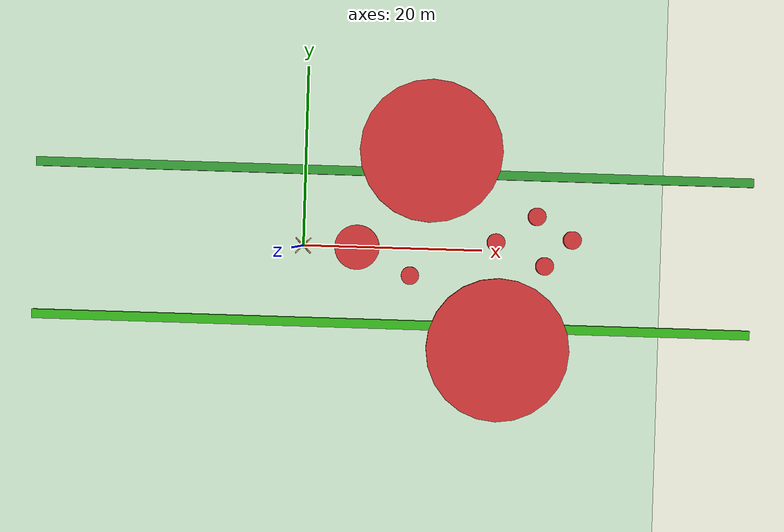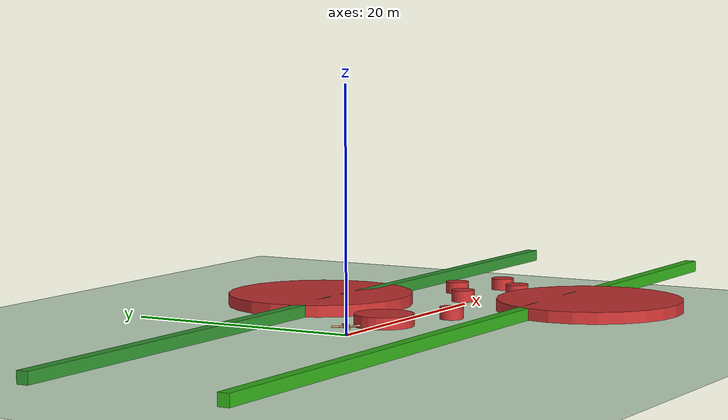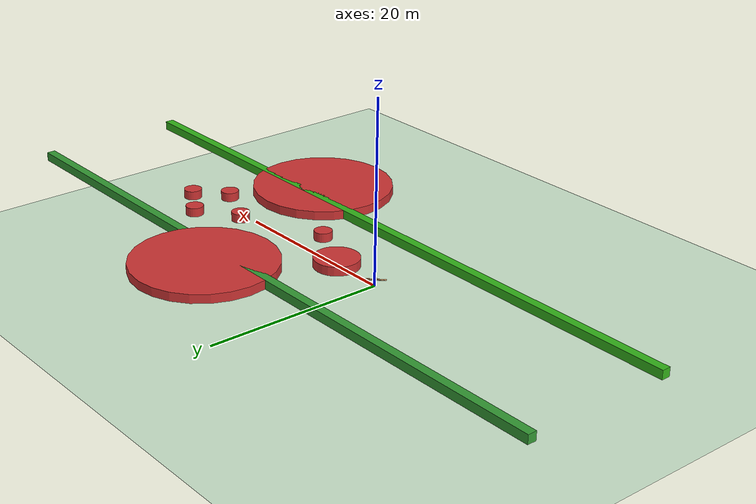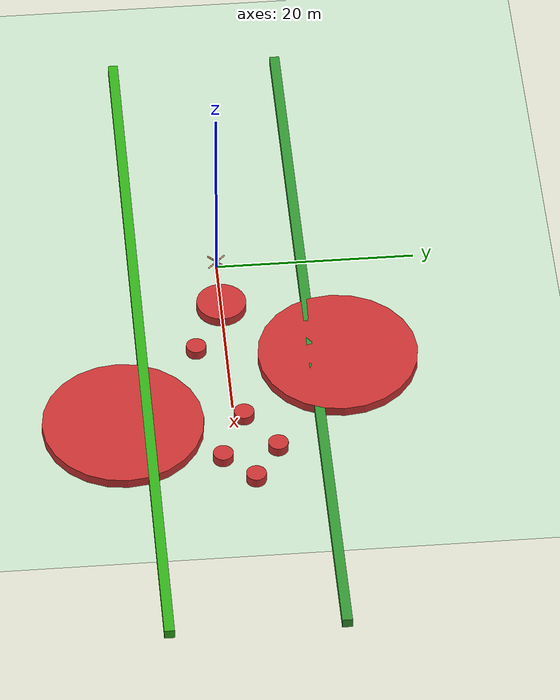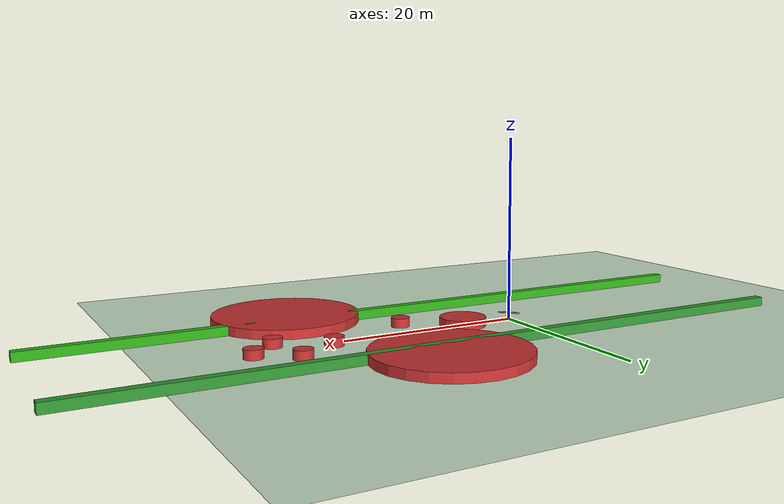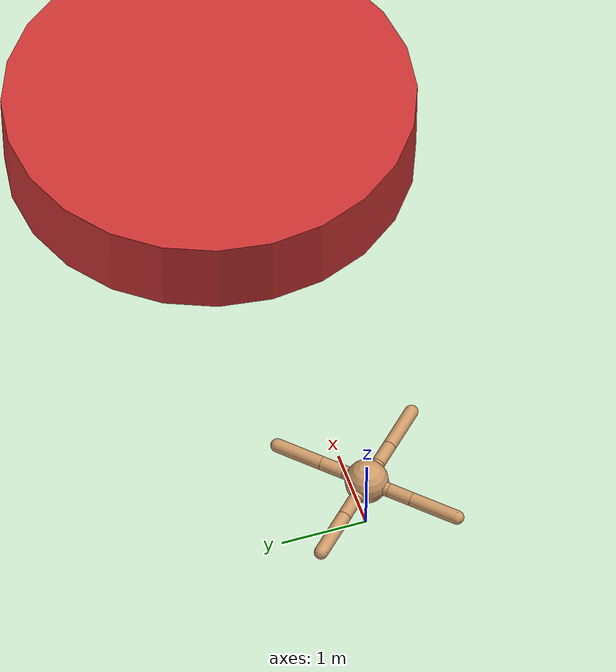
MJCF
<mujoco model="ant">
  <compiler angle="degree" coordinate="local" inertiafromgeom="true"/>
  <option integrator="RK4" timestep="0.01"/>
  <custom>
    <numeric data="0.0 0.0 0.55 1.0 0.0 0.0 0.0 0.0 1.0 0.0 -1.0 0.0 -1.0 0.0 1.0" name="init_qpos"/>
  </custom>
  <default>
    <joint armature="1" damping="1" limited="true"/>
    <geom conaffinity="0" condim="3" density="5.0" friction="1 0.5 0.5" margin="0.01" rgba="0.8 0.6 0.4 1"/>
  </default>
  <asset>
    <texture builtin="gradient" height="100" rgb1="1 1 1" rgb2="0 0 0" type="skybox" width="100"/>
    <texture builtin="flat" height="1278" mark="cross" markrgb="1 1 1" name="texgeom" random="0.01" rgb1="0.8 0.6 0.4" rgb2="0.8 0.6 0.4" type="cube" width="127"/>
    <texture builtin="checker" height="100" name="texplane" rgb1="0 0 0" rgb2="0.8 0.8 0.8" type="2d" width="100"/>
    <material name="MatPlane" reflectance="0.5" shininess="1" specular="1" texrepeat="60 60" texture="texplane"/>
    <material name="geom" texture="texgeom" texuniform="true"/>
  </asset>
  <worldbody>
    <light cutoff="100" diffuse="1 1 1" dir="-0 0 -1.3" directional="true" exponent="1" pos="0 0 1.3" specular=".1 .1 .1"/>
    <geom conaffinity="1" condim="3" material="MatPlane" name="floor" pos="0 0 0" rgba="0.8 0.9 0.8 1" size="40 40 40" type="plane"/>
    <geom name="cylinder0" type="cylinder" pos="6 0 0.5" size="2.5 0.5" rgba="0.8 0.2 0.2 1" contype="1" conaffinity="1" density="0"/>
    <geom name="cylinder1" type="cylinder" pos="12 -3 0.5" size="1 0.5" rgba="0.8 0.2 0.2 1" contype="1" conaffinity="1" density="0"/>
    <geom name="cylinder2" type="cylinder" pos="14 11 0.5" size="8 0.5" rgba="0.8 0.2 0.2 1" contype="1" conaffinity="1" density="0"/>
    <geom name="cylinder3" type="cylinder" pos="22 -11 0.5" size="8 0.5" rgba="0.8 0.2 0.2 1" contype="1" conaffinity="1" density="0"/>

    <geom name="cylinder4" type="cylinder" pos="21.5 1 0.5" size="1 0.5" rgba="0.8 0.2 0.2 1" contype="1" conaffinity="1" density="0"/>
    <geom name="cylinder5" type="cylinder" pos="26 4 0.5" size="1 0.5" rgba="0.8 0.2 0.2 1" contype="1" conaffinity="1" density="0"/>
    <geom name="cylinder6" type="cylinder" pos="27 -1.5 0.5" size="1 0.5" rgba="0.8 0.2 0.2 1" contype="1" conaffinity="1" density="0"/>
    <geom name="cylinder7" type="cylinder" pos="30 1.5 0.5" size="1 0.5" rgba="0.8 0.2 0.2 1" contype="1" conaffinity="1" density="0"/>

    <geom name="WallTop" type="box" pos="10.0 8.5 0.5" size="40 0.5 0.5" rgba="0.2 0.6 0.2 1" contype="1" conaffinity="1" density="0"/>
    <geom name="WallBot" type="box" pos="10.0 -8.5 0.5" size="40 0.5 0.5" rgba="0.2 0.7 0.1 1" contype="1" conaffinity="1" density="0"/>

    <body name="torso" pos="0 0 0.75">
      <camera name="track" mode="trackcom" pos="-2 -5 2" xyaxes="1 -0.5 0 0 0.5 1"/>

      <geom name="torso_geom" pos="0 0 0" size="0.25" type="sphere"/>
      <joint armature="0" damping="0" limited="false" margin="0.01" name="root" pos="0 0 0" type="free"/>

      <body name="front_left_leg" pos="0 0 0">
        <geom fromto="0.0 0.0 0.0 0.2 0.2 0.0" name="aux_1_geom" size="0.08" type="capsule"/>
        <body name="aux_1" pos="0.2 0.2 0">
          <joint axis="0 0 1" name="hip_1" pos="0.0 0.0 0.0" range="-30 30" type="hinge"/>
          <geom fromto="0.0 0.0 0.0 0.2 0.2 0.0" name="left_leg_geom" size="0.08" type="capsule"/>
          <body pos="0.2 0.2 0">
            <joint axis="-1 1 0" name="ankle_1" pos="0.0 0.0 0.0" range="30 70" type="hinge"/>
            <geom fromto="0.0 0.0 0.0 0.4 0.4 0.0" name="left_ankle_geom" size="0.08" type="capsule"/>
          </body>
        </body>
      </body>
      <body name="front_right_leg" pos="0 0 0">
        <geom fromto="0.0 0.0 0.0 -0.2 0.2 0.0" name="aux_2_geom" size="0.08" type="capsule"/>
        <body name="aux_2" pos="-0.2 0.2 0">
          <joint axis="0 0 1" name="hip_2" pos="0.0 0.0 0.0" range="-30 30" type="hinge"/>
          <geom fromto="0.0 0.0 0.0 -0.2 0.2 0.0" name="right_leg_geom" size="0.08" type="capsule"/>
          <body pos="-0.2 0.2 0">
            <joint axis="1 1 0" name="ankle_2" pos="0.0 0.0 0.0" range="-70 -30" type="hinge"/>
            <geom fromto="0.0 0.0 0.0 -0.4 0.4 0.0" name="right_ankle_geom" size="0.08" type="capsule"/>
          </body>
        </body>
      </body>
      <body name="back_leg" pos="0 0 0">
        <geom fromto="0.0 0.0 0.0 -0.2 -0.2 0.0" name="aux_3_geom" size="0.08" type="capsule"/>
        <body name="aux_3" pos="-0.2 -0.2 0">
          <joint axis="0 0 1" name="hip_3" pos="0.0 0.0 0.0" range="-30 30" type="hinge"/>
          <geom fromto="0.0 0.0 0.0 -0.2 -0.2 0.0" name="back_leg_geom" size="0.08" type="capsule"/>
          <body pos="-0.2 -0.2 0">
            <joint axis="-1 1 0" name="ankle_3" pos="0.0 0.0 0.0" range="-70 -30" type="hinge"/>
            <geom fromto="0.0 0.0 0.0 -0.4 -0.4 0.0" name="third_ankle_geom" size="0.08" type="capsule"/>
          </body>
        </body>
      </body>
      <body name="right_back_leg" pos="0 0 0">
        <geom fromto="0.0 0.0 0.0 0.2 -0.2 0.0" name="aux_4_geom" size="0.08" type="capsule"/>
        <body name="aux_4" pos="0.2 -0.2 0">
          <joint axis="0 0 1" name="hip_4" pos="0.0 0.0 0.0" range="-30 30" type="hinge"/>
          <geom fromto="0.0 0.0 0.0 0.2 -0.2 0.0" name="rightback_leg_geom" size="0.08" type="capsule"/>
          <body pos="0.2 -0.2 0">
            <joint axis="1 1 0" name="ankle_4" pos="0.0 0.0 0.0" range="30 70" type="hinge"/>
            <geom fromto="0.0 0.0 0.0 0.4 -0.4 0.0" name="fourth_ankle_geom" size="0.08" type="capsule"/>
          </body>
        </body>
      </body>
    </body>
  </worldbody>
  <actuator>
    <motor ctrllimited="true" ctrlrange="-1.0 1.0" joint="hip_4" gear="150"/>
    <motor ctrllimited="true" ctrlrange="-1.0 1.0" joint="ankle_4" gear="150"/>
    <motor ctrllimited="true" ctrlrange="-1.0 1.0" joint="hip_1" gear="150"/>
    <motor ctrllimited="true" ctrlrange="-1.0 1.0" joint="ankle_1" gear="150"/>
    <motor ctrllimited="true" ctrlrange="-1.0 1.0" joint="hip_2" gear="150"/>
    <motor ctrllimited="true" ctrlrange="-1.0 1.0" joint="ankle_2" gear="150"/>
    <motor ctrllimited="true" ctrlrange="-1.0 1.0" joint="hip_3" gear="150"/>
    <motor ctrllimited="true" ctrlrange="-1.0 1.0" joint="ankle_3" gear="150"/>
  </actuator>
</mujoco>
